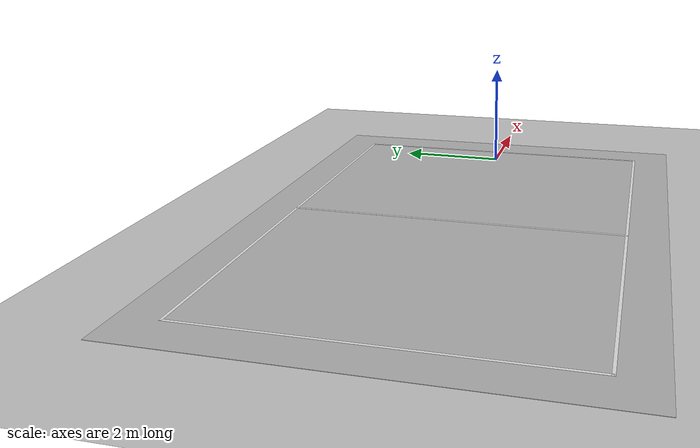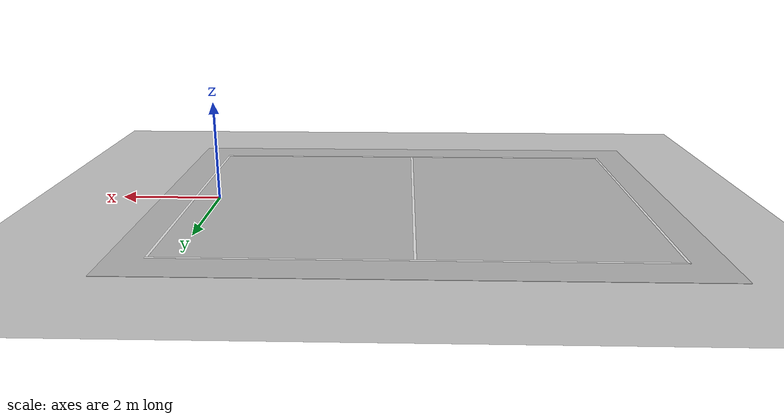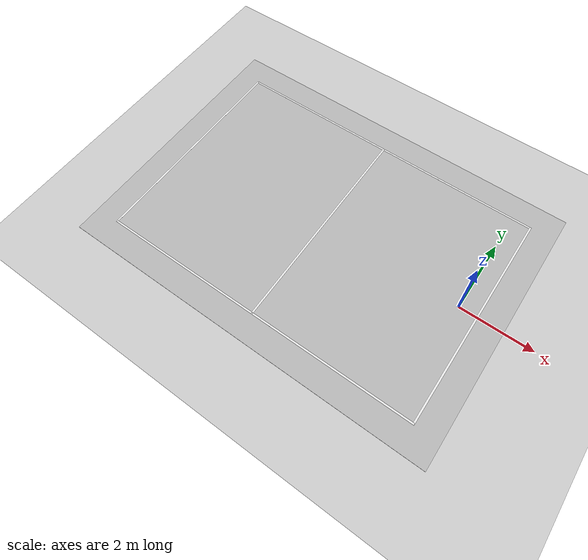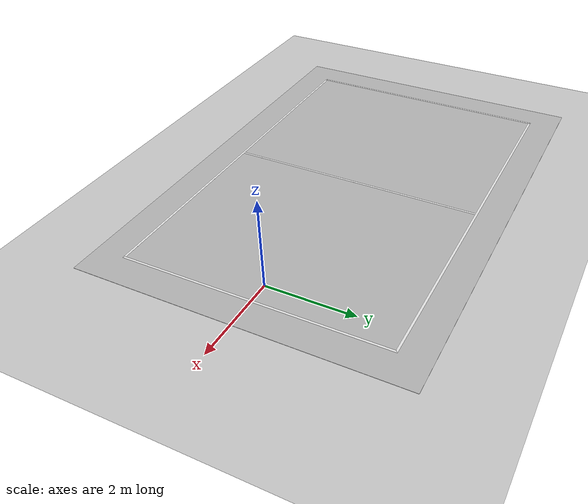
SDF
<sdf version="1.6">
 <world name="learning">
  <physics type="ode"><real_time_update_rate>400</real_time_update_rate></physics>
  <light name="sun" type="directional">
   <pose>0 0 10 0 -0 0</pose>
   <diffuse>0.8 0.8 0.8 1</diffuse>
   <specular>0.2 0.2 0.2 1</specular>
   <attenuation>
    <range>1000</range>
    <constant>0.9</constant>
    <linear>0.01</linear>
    <quadratic>0.001</quadratic>
   </attenuation>
   <direction>0 0.5 -0.9</direction>
  </light>
  <light name="point_light" type="point">
   <cast_shadows>0</cast_shadows>
   <pose>0 -0.377195 6.59868 0 -0 0</pose>
   <diffuse>0.784314 0.784314 0.784314 1</diffuse>
   <specular>0.0980392 0.0980392 0.0980392 1</specular>
   <attenuation>
    <range>50</range>
    <constant>0.8</constant>
    <linear>0</linear>
    <quadratic>0.001</quadratic>
   </attenuation>
   <direction>0 0 -1</direction>
  </light>
  <model name="ground_plane">
   <static>1</static>
   <link name="link">
    <collision name="collision">
     <geometry><plane><normal>0 0 1</normal><size>18.4 7.4</size></plane></geometry>
     <surface><friction><ode><mu>100</mu><mu2>50</mu2></ode></friction></surface>
    </collision>
    <visual name="visual">
     <cast_shadows>0</cast_shadows>
     <geometry><plane><normal>0 0 1</normal><size>18.4 7.4</size></plane></geometry>
     <material>
      <script><uri>file://media/materials/scripts/gazebo.material</uri><name>Gazebo/Grey</name></script>
     </material>
    </visual>
    <velocity_decay><linear>0</linear><angular>0</angular></velocity_decay>
   </link>
  </model>
  <model name="RoboCup 14 SPL Field">
   <static>1</static>
   <link name="field">
    <pose>0 0 0.01 0 -0 0</pose>
    <collision name="collision">
     <geometry><plane><normal>0 0 1</normal><size>10.4 7.4</size></plane></geometry>
     <surface><friction><ode><mu>100</mu><mu2>50</mu2></ode></friction></surface>
    </collision>
    <visual name="carpet">
     <cast_shadows>0</cast_shadows>
     <geometry><plane><normal>0 0 1</normal><size>10.4 7.4</size></plane></geometry>
     <material>
      <script>
       <uri>model://robocup09_spl_field/materials/scripts/</uri>
       <uri>model://robocup09_spl_field/materials/textures/</uri>
       <name>RoboCup/Carpet</name>
      </script>
     </material>
    </visual>
    <visual name="sideline_1">
     <pose>0 3 0.011 0 -0 0</pose>
     <cast_shadows>0</cast_shadows>
     <geometry><plane><normal>0 0 1</normal><size>9.05 0.05</size></plane></geometry>
     <material>
      <script><uri>file://media/materials/scripts/gazebo.material</uri><name>Gazebo/White</name></script>
     </material>
    </visual>
    <visual name="sideline_2">
     <pose>0 -3 0.011 0 -0 0</pose>
     <cast_shadows>0</cast_shadows>
     <geometry><plane><normal>0 0 1</normal><size>9.05 0.05</size></plane></geometry>
     <material>
      <script><uri>file://media/materials/scripts/gazebo.material</uri><name>Gazebo/White</name></script>
     </material>
    </visual>
    <visual name="endline_1">
     <pose>-4.5 0 0.011 0 -0 0</pose>
     <cast_shadows>0</cast_shadows>
     <geometry><plane><normal>0 0 1</normal><size>0.05 6.05</size></plane></geometry>
     <material>
      <script><uri>file://media/materials/scripts/gazebo.material</uri><name>Gazebo/White</name></script>
     </material>
    </visual>
    <visual name="endline_2">
     <pose>4.5 0 0.011 0 -0 0</pose>
     <cast_shadows>0</cast_shadows>
     <geometry><plane><normal>0 0 1</normal><size>0.05 6.05</size></plane></geometry>
     <material>
      <script><uri>file://media/materials/scripts/gazebo.material</uri><name>Gazebo/White</name></script>
     </material>
    </visual>
    <visual name="halfway_line">
     <pose>0 0 0.011 0 -0 0</pose>
     <cast_shadows>0</cast_shadows>
     <geometry><plane><normal>0 0 1</normal><size>0.05 6.05</size></plane></geometry>
     <material>
      <script><uri>file://media/materials/scripts/gazebo.material</uri><name>Gazebo/White</name></script>
     </material>
    </visual>
    <velocity_decay><linear>0</linear><angular>0</angular></velocity_decay>
   </link>
   <pose>-4 0 0 0 -0 0</pose>
  </model>
 </world>
</sdf>
